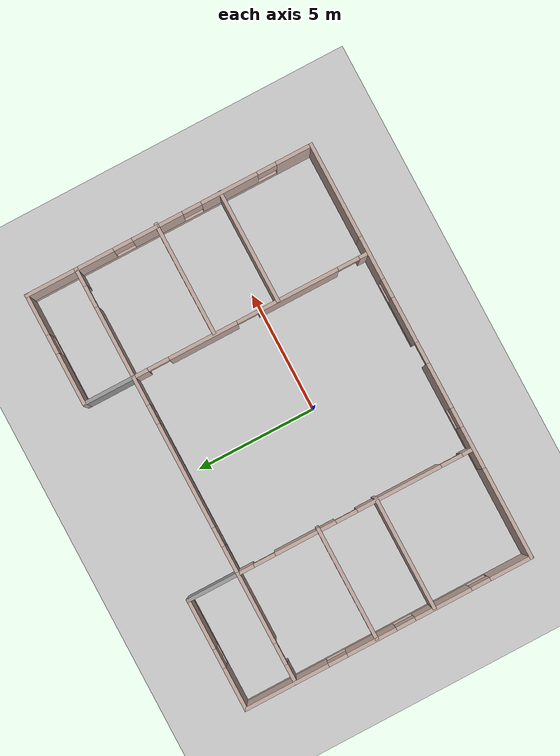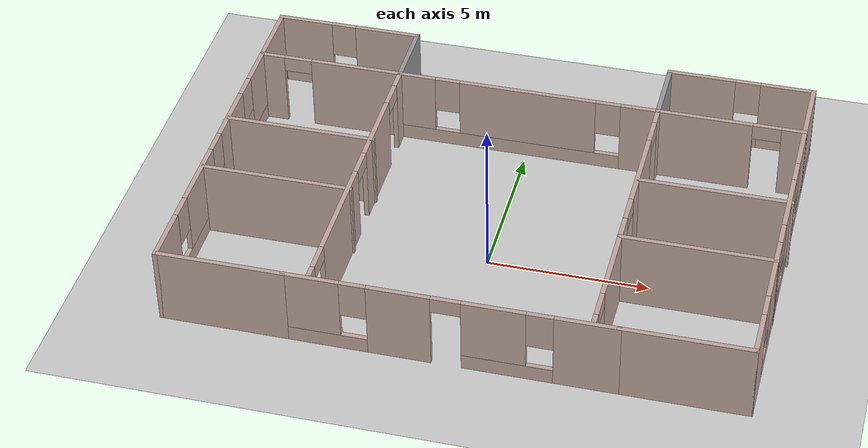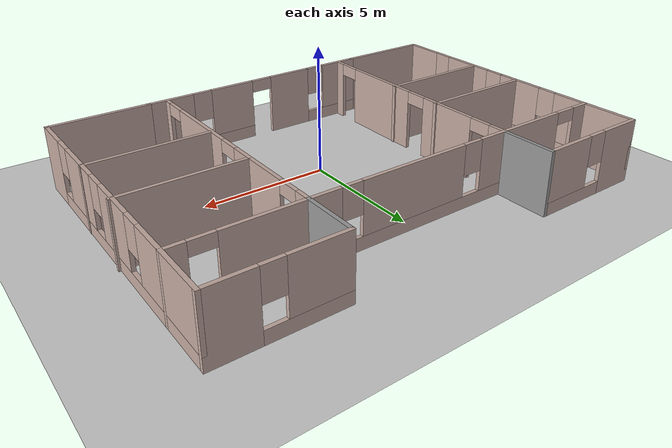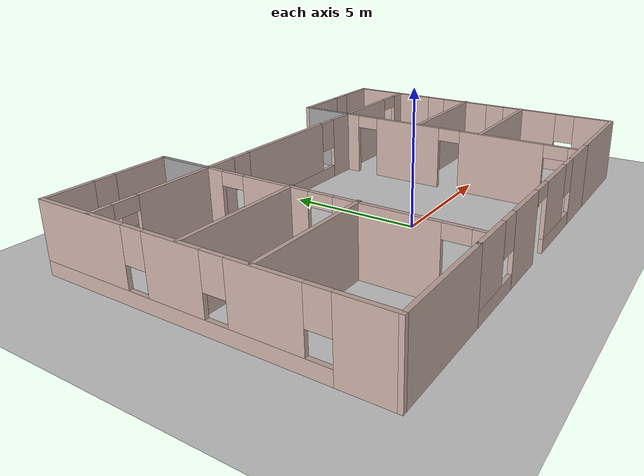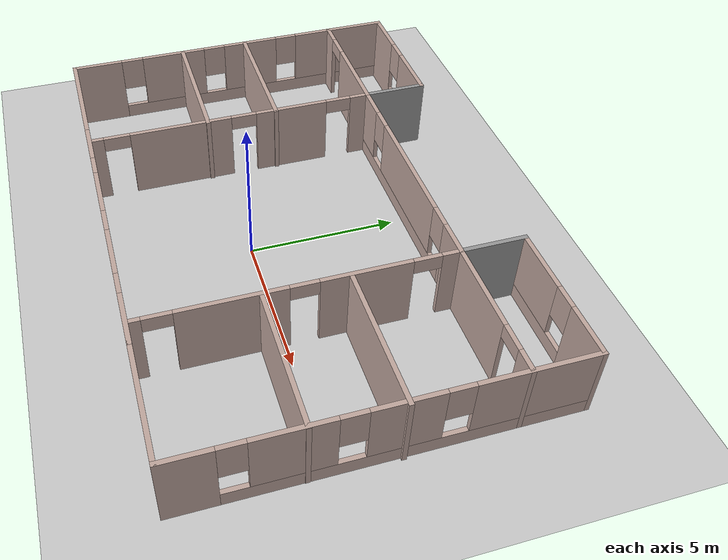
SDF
<sdf version="1.6">
 <world name="default">
  <model name="ground_plane">
   <static>1</static>
   <link name="link">
    <collision name="collision">
     <geometry><plane><normal>0 0 1</normal><size>100 100</size></plane></geometry>
     <surface>
      <contact><collide_bitmask>65535</collide_bitmask></contact>
      <friction><ode><mu>100</mu><mu2>50</mu2></ode></friction>
     </surface>
    </collision>
    <visual name="visual">
     <cast_shadows>0</cast_shadows>
     <geometry><plane><normal>0 0 1</normal><size>100 100</size></plane></geometry>
     <material>
      <script><uri>file://media/materials/scripts/gazebo.material</uri><name>Gazebo/Grey</name></script>
     </material>
    </visual>
   </link>
  </model>
  <model name="Untitled">
   <pose>0.02249 1.505 0 0 -0 0</pose>
   <link name="Wall_33">
    <collision name="Wall_33_Collision">
     <geometry><box><size>4 0.15 2.5</size></box></geometry>
     <pose>0 0 1.25 0 -0 0</pose>
    </collision>
    <visual name="Wall_33_Visual">
     <pose>0 0 1.25 0 -0 0</pose>
     <geometry><box><size>4 0.15 2.5</size></box></geometry>
     <material>
      <script><uri>file://media/materials/scripts/gazebo.material</uri><name>Gazebo/Grey</name></script>
      <ambient>0.760784 0.662745 0.627451 1</ambient>
     </material>
     <meta><layer>0</layer></meta>
    </visual>
    <pose>-6.8875 -6.05 0 0 -0 3.14159</pose>
   </link>
   <link name="Wall_36">
    <pose>-8.8125 0 0 0 -0 1.5708</pose>
    <visual name="Wall_36_Visual_0">
     <pose>-5.21271 0 1.25 0 -0 0</pose>
     <geometry><box><size>1.82458 0.15 2.5</size></box></geometry>
     <material>
      <script><uri>file://media/materials/scripts/gazebo.material</uri><name>Gazebo/Grey</name></script>
      <ambient>0.760784 0.662745 0.627451 1</ambient>
     </material>
     <meta><layer>0</layer></meta>
    </visual>
    <collision name="Wall_36_Collision_0">
     <geometry><box><size>1.82458 0.15 2.5</size></box></geometry>
     <pose>-5.21271 0 1.25 0 -0 0</pose>
    </collision>
    <visual name="Wall_36_Visual_1">
     <pose>0.912289 0 0.25 0 -0 0</pose>
     <geometry><box><size>10.4254 0.15 0.5</size></box></geometry>
     <material>
      <script><uri>file://media/materials/scripts/gazebo.material</uri><name>Gazebo/Grey</name></script>
      <ambient>0.760784 0.662745 0.627451 1</ambient>
     </material>
     <meta><layer>0</layer></meta>
    </visual>
    <collision name="Wall_36_Collision_1">
     <geometry><box><size>10.4254 0.15 0.5</size></box></geometry>
     <pose>0.912289 0 0.25 0 -0 0</pose>
    </collision>
    <visual name="Wall_36_Visual_2">
     <pose>-2.30973 0 1.5 0 -0 0</pose>
     <geometry><box><size>2.38138 0.15 2</size></box></geometry>
     <material>
      <script><uri>file://media/materials/scripts/gazebo.material</uri><name>Gazebo/Grey</name></script>
      <ambient>0.760784 0.662745 0.627451 1</ambient>
     </material>
     <meta><layer>0</layer></meta>
    </visual>
    <collision name="Wall_36_Collision_2">
     <geometry><box><size>2.38138 0.15 2</size></box></geometry>
     <pose>-2.30973 0 1.5 0 -0 0</pose>
    </collision>
    <visual name="Wall_36_Visual_3">
     <pose>0.718703 0 1.5 0 -0 0</pose>
     <geometry><box><size>2.07548 0.15 2</size></box></geometry>
     <material>
      <script><uri>file://media/materials/scripts/gazebo.material</uri><name>Gazebo/Grey</name></script>
      <ambient>0.760784 0.662745 0.627451 1</ambient>
     </material>
     <meta><layer>0</layer></meta>
    </visual>
    <collision name="Wall_36_Collision_3">
     <geometry><box><size>2.07548 0.15 2</size></box></geometry>
     <pose>0.718703 0 1.5 0 -0 0</pose>
    </collision>
    <visual name="Wall_36_Visual_4">
     <pose>4.34072 0 1.5 0 -0 0</pose>
     <geometry><box><size>3.56856 0.15 2</size></box></geometry>
     <material>
      <script><uri>file://media/materials/scripts/gazebo.material</uri><name>Gazebo/Grey</name></script>
      <ambient>0.760784 0.662745 0.627451 1</ambient>
     </material>
     <meta><layer>0</layer></meta>
    </visual>
    <collision name="Wall_36_Collision_4">
     <geometry><box><size>3.56856 0.15 2</size></box></geometry>
     <pose>4.34072 0 1.5 0 -0 0</pose>
    </collision>
    <visual name="Wall_36_Visual_5">
     <pose>-3.90042 0 1.9 0 -0 0</pose>
     <geometry><box><size>0.8 0.15 1.2</size></box></geometry>
     <material>
      <script><uri>file://media/materials/scripts/gazebo.material</uri><name>Gazebo/Grey</name></script>
      <ambient>0.760784 0.662745 0.627451 1</ambient>
     </material>
     <meta><layer>0</layer></meta>
    </visual>
    <collision name="Wall_36_Collision_5">
     <geometry><box><size>0.8 0.15 1.2</size></box></geometry>
     <pose>-3.90042 0 1.9 0 -0 0</pose>
    </collision>
    <visual name="Wall_36_Visual_6">
     <pose>-0.719037 0 1.9 0 -0 0</pose>
     <geometry><box><size>0.8 0.15 1.2</size></box></geometry>
     <material>
      <script><uri>file://media/materials/scripts/gazebo.material</uri><name>Gazebo/Grey</name></script>
      <ambient>0.760784 0.662745 0.627451 1</ambient>
     </material>
     <meta><layer>0</layer></meta>
    </visual>
    <collision name="Wall_36_Collision_6">
     <geometry><box><size>0.8 0.15 1.2</size></box></geometry>
     <pose>-0.719037 0 1.9 0 -0 0</pose>
    </collision>
    <visual name="Wall_36_Visual_7">
     <pose>2.15644 0 1.9 0 -0 0</pose>
     <geometry><box><size>0.8 0.15 1.2</size></box></geometry>
     <material>
      <script><uri>file://media/materials/scripts/gazebo.material</uri><name>Gazebo/Grey</name></script>
      <ambient>0.760784 0.662745 0.627451 1</ambient>
     </material>
     <meta><layer>0</layer></meta>
    </visual>
    <collision name="Wall_36_Collision_7">
     <geometry><box><size>0.8 0.15 1.2</size></box></geometry>
     <pose>2.15644 0 1.9 0 -0 0</pose>
    </collision>
   </link>
   <link name="Wall_37">
    <pose>-6.5125 6.05 0 0 -0 0</pose>
    <visual name="Wall_37_Visual_0">
     <pose>-1.47007 0 1.25 0 -0 0</pose>
     <geometry><box><size>1.80987 0.15 2.5</size></box></geometry>
     <material>
      <script><uri>file://media/materials/scripts/gazebo.material</uri><name>Gazebo/Grey</name></script>
      <ambient>0.760784 0.662745 0.627451 1</ambient>
     </material>
     <meta><layer>0</layer></meta>
    </visual>
    <collision name="Wall_37_Collision_0">
     <geometry><box><size>1.80987 0.15 2.5</size></box></geometry>
     <pose>-1.47007 0 1.25 0 -0 0</pose>
    </collision>
    <visual name="Wall_37_Visual_1">
     <pose>0.904934 0 0.25 0 -0 0</pose>
     <geometry><box><size>2.94013 0.15 0.5</size></box></geometry>
     <material>
      <script><uri>file://media/materials/scripts/gazebo.material</uri><name>Gazebo/Grey</name></script>
      <ambient>0.760784 0.662745 0.627451 1</ambient>
     </material>
     <meta><layer>0</layer></meta>
    </visual>
    <collision name="Wall_37_Collision_1">
     <geometry><box><size>2.94013 0.15 0.5</size></box></geometry>
     <pose>0.904934 0 0.25 0 -0 0</pose>
    </collision>
    <visual name="Wall_37_Visual_2">
     <pose>1.30493 0 1.5 0 -0 0</pose>
     <geometry><box><size>2.14013 0.15 2</size></box></geometry>
     <material>
      <script><uri>file://media/materials/scripts/gazebo.material</uri><name>Gazebo/Grey</name></script>
      <ambient>0.760784 0.662745 0.627451 1</ambient>
     </material>
     <meta><layer>0</layer></meta>
    </visual>
    <collision name="Wall_37_Collision_2">
     <geometry><box><size>2.14013 0.15 2</size></box></geometry>
     <pose>1.30493 0 1.5 0 -0 0</pose>
    </collision>
    <visual name="Wall_37_Visual_3">
     <pose>-0.165132 0 1.9 0 -0 0</pose>
     <geometry><box><size>0.8 0.15 1.2</size></box></geometry>
     <material>
      <script><uri>file://media/materials/scripts/gazebo.material</uri><name>Gazebo/Grey</name></script>
      <ambient>0.760784 0.662745 0.627451 1</ambient>
     </material>
     <meta><layer>0</layer></meta>
    </visual>
    <collision name="Wall_37_Collision_3">
     <geometry><box><size>0.8 0.15 1.2</size></box></geometry>
     <pose>-0.165132 0 1.9 0 -0 0</pose>
    </collision>
   </link>
   <link name="Wall_40">
    <collision name="Wall_40_Collision">
     <geometry><box><size>4 0.15 2.5</size></box></geometry>
     <pose>0 0 1.25 0 -0 0</pose>
    </collision>
    <visual name="Wall_40_Visual">
     <pose>0 0 1.25 0 -0 0</pose>
     <geometry><box><size>4 0.15 2.5</size></box></geometry>
     <material>
      <script><uri>file://media/materials/scripts/gazebo.material</uri><name>Gazebo/Grey</name></script>
      <ambient>0.760784 0.662745 0.627451 1</ambient>
     </material>
     <meta><layer>0</layer></meta>
    </visual>
    <pose>6.8125 -6.05 0 0 -0 0</pose>
   </link>
   <link name="Wall_42">
    <pose>8.73751 0 0 0 -0 1.5708</pose>
    <visual name="Wall_42_Visual_0">
     <pose>-5.33507 0 1.25 0 -0 0</pose>
     <geometry><box><size>1.57986 0.15 2.5</size></box></geometry>
     <material>
      <script><uri>file://media/materials/scripts/gazebo.material</uri><name>Gazebo/Grey</name></script>
      <ambient>0.760784 0.662745 0.627451 1</ambient>
     </material>
     <meta><layer>0</layer></meta>
    </visual>
    <collision name="Wall_42_Collision_0">
     <geometry><box><size>1.57986 0.15 2.5</size></box></geometry>
     <pose>-5.33507 0 1.25 0 -0 0</pose>
    </collision>
    <visual name="Wall_42_Visual_1">
     <pose>0.789928 0 0.25 0 -0 0</pose>
     <geometry><box><size>10.6701 0.15 0.5</size></box></geometry>
     <material>
      <script><uri>file://media/materials/scripts/gazebo.material</uri><name>Gazebo/Grey</name></script>
      <ambient>0.760784 0.662745 0.627451 1</ambient>
     </material>
     <meta><layer>0</layer></meta>
    </visual>
    <collision name="Wall_42_Collision_1">
     <geometry><box><size>10.6701 0.15 0.5</size></box></geometry>
     <pose>0.789928 0 0.25 0 -0 0</pose>
    </collision>
    <visual name="Wall_42_Visual_2">
     <pose>-2.55445 0 1.5 0 -0 0</pose>
     <geometry><box><size>2.38138 0.15 2</size></box></geometry>
     <material>
      <script><uri>file://media/materials/scripts/gazebo.material</uri><name>Gazebo/Grey</name></script>
      <ambient>0.760784 0.662745 0.627451 1</ambient>
     </material>
     <meta><layer>0</layer></meta>
    </visual>
    <collision name="Wall_42_Collision_2">
     <geometry><box><size>2.38138 0.15 2</size></box></geometry>
     <pose>-2.55445 0 1.5 0 -0 0</pose>
    </collision>
    <visual name="Wall_42_Visual_3">
     <pose>0.504572 0 1.5 0 -0 0</pose>
     <geometry><box><size>2.13666 0.15 2</size></box></geometry>
     <material>
      <script><uri>file://media/materials/scripts/gazebo.material</uri><name>Gazebo/Grey</name></script>
      <ambient>0.760784 0.662745 0.627451 1</ambient>
     </material>
     <meta><layer>0</layer></meta>
    </visual>
    <collision name="Wall_42_Collision_3">
     <geometry><box><size>2.13666 0.15 2</size></box></geometry>
     <pose>0.504572 0 1.5 0 -0 0</pose>
    </collision>
    <visual name="Wall_42_Visual_4">
     <pose>4.24895 0 1.5 0 -0 0</pose>
     <geometry><box><size>3.7521 0.15 2</size></box></geometry>
     <material>
      <script><uri>file://media/materials/scripts/gazebo.material</uri><name>Gazebo/Grey</name></script>
      <ambient>0.760784 0.662745 0.627451 1</ambient>
     </material>
     <meta><layer>0</layer></meta>
    </visual>
    <collision name="Wall_42_Collision_4">
     <geometry><box><size>3.7521 0.15 2</size></box></geometry>
     <pose>4.24895 0 1.5 0 -0 0</pose>
    </collision>
    <visual name="Wall_42_Visual_5">
     <pose>-4.14514 0 1.9 0 -0 0</pose>
     <geometry><box><size>0.8 0.15 1.2</size></box></geometry>
     <material>
      <script><uri>file://media/materials/scripts/gazebo.material</uri><name>Gazebo/Grey</name></script>
      <ambient>0.760784 0.662745 0.627451 1</ambient>
     </material>
     <meta><layer>0</layer></meta>
    </visual>
    <collision name="Wall_42_Collision_5">
     <geometry><box><size>0.8 0.15 1.2</size></box></geometry>
     <pose>-4.14514 0 1.9 0 -0 0</pose>
    </collision>
    <visual name="Wall_42_Visual_6">
     <pose>-0.963759 0 1.9 0 -0 0</pose>
     <geometry><box><size>0.8 0.15 1.2</size></box></geometry>
     <material>
      <script><uri>file://media/materials/scripts/gazebo.material</uri><name>Gazebo/Grey</name></script>
      <ambient>0.760784 0.662745 0.627451 1</ambient>
     </material>
     <meta><layer>0</layer></meta>
    </visual>
    <collision name="Wall_42_Collision_6">
     <geometry><box><size>0.8 0.15 1.2</size></box></geometry>
     <pose>-0.963759 0 1.9 0 -0 0</pose>
    </collision>
    <visual name="Wall_42_Visual_7">
     <pose>1.9729 0 1.9 0 -0 0</pose>
     <geometry><box><size>0.8 0.15 1.2</size></box></geometry>
     <material>
      <script><uri>file://media/materials/scripts/gazebo.material</uri><name>Gazebo/Grey</name></script>
      <ambient>0.760784 0.662745 0.627451 1</ambient>
     </material>
     <meta><layer>0</layer></meta>
    </visual>
    <collision name="Wall_42_Collision_7">
     <geometry><box><size>0.8 0.15 1.2</size></box></geometry>
     <pose>1.9729 0 1.9 0 -0 0</pose>
    </collision>
   </link>
   <link name="Wall_44">
    <pose>6.4375 6.05 0 0 -0 3.14159</pose>
    <visual name="Wall_44_Visual_0">
     <pose>-1.4986 0 1.25 0 -0 0</pose>
     <geometry><box><size>1.75279 0.15 2.5</size></box></geometry>
     <material>
      <script><uri>file://media/materials/scripts/gazebo.material</uri><name>Gazebo/Grey</name></script>
      <ambient>0.760784 0.662745 0.627451 1</ambient>
     </material>
     <meta><layer>0</layer></meta>
    </visual>
    <collision name="Wall_44_Collision_0">
     <geometry><box><size>1.75279 0.15 2.5</size></box></geometry>
     <pose>-1.4986 0 1.25 0 -0 0</pose>
    </collision>
    <visual name="Wall_44_Visual_1">
     <pose>0.876396 0 0.25 0 -0 0</pose>
     <geometry><box><size>2.99721 0.15 0.5</size></box></geometry>
     <material>
      <script><uri>file://media/materials/scripts/gazebo.material</uri><name>Gazebo/Grey</name></script>
      <ambient>0.760784 0.662745 0.627451 1</ambient>
     </material>
     <meta><layer>0</layer></meta>
    </visual>
    <collision name="Wall_44_Collision_1">
     <geometry><box><size>2.99721 0.15 0.5</size></box></geometry>
     <pose>0.876396 0 0.25 0 -0 0</pose>
    </collision>
    <visual name="Wall_44_Visual_2">
     <pose>1.2764 0 1.5 0 -0 0</pose>
     <geometry><box><size>2.19721 0.15 2</size></box></geometry>
     <material>
      <script><uri>file://media/materials/scripts/gazebo.material</uri><name>Gazebo/Grey</name></script>
      <ambient>0.760784 0.662745 0.627451 1</ambient>
     </material>
     <meta><layer>0</layer></meta>
    </visual>
    <collision name="Wall_44_Collision_2">
     <geometry><box><size>2.19721 0.15 2</size></box></geometry>
     <pose>1.2764 0 1.5 0 -0 0</pose>
    </collision>
    <visual name="Wall_44_Visual_3">
     <pose>-0.222208 0 1.9 0 -0 0</pose>
     <geometry><box><size>0.8 0.15 1.2</size></box></geometry>
     <material>
      <script><uri>file://media/materials/scripts/gazebo.material</uri><name>Gazebo/Grey</name></script>
      <ambient>0.760784 0.662745 0.627451 1</ambient>
     </material>
     <meta><layer>0</layer></meta>
    </visual>
    <collision name="Wall_44_Collision_3">
     <geometry><box><size>0.8 0.15 1.2</size></box></geometry>
     <pose>-0.222208 0 1.9 0 -0 0</pose>
    </collision>
   </link>
   <link name="Wall_46">
    <collision name="Wall_46_Collision">
     <geometry><box><size>2.25 0.15 2.5</size></box></geometry>
     <pose>0 0 1.25 0 -0 0</pose>
    </collision>
    <visual name="Wall_46_Visual">
     <pose>0 0 1.25 0 -0 0</pose>
     <geometry><box><size>2.25 0.15 2.5</size></box></geometry>
     <material>
      <script><uri>file://media/materials/scripts/gazebo.material</uri><name>Gazebo/Grey</name></script>
      <ambient>1 1 1 1</ambient>
     </material>
     <meta><layer>0</layer></meta>
    </visual>
    <pose>4.1375 5 0 0 0 -1.5708</pose>
   </link>
   <link name="Wall_69">
    <pose>6.4375 3.95 0 0 -0 0</pose>
    <visual name="Wall_69_Visual_0">
     <pose>-0.842543 0 1.25 0 -0 0</pose>
     <geometry><box><size>3.06492 0.15 2.5</size></box></geometry>
     <material>
      <script><uri>file://media/materials/scripts/gazebo.material</uri><name>Gazebo/Grey</name></script>
      <ambient>0.760784 0.662745 0.627451 1</ambient>
     </material>
     <meta><layer>0</layer></meta>
    </visual>
    <collision name="Wall_69_Collision_0">
     <geometry><box><size>3.06492 0.15 2.5</size></box></geometry>
     <pose>-0.842543 0 1.25 0 -0 0</pose>
    </collision>
    <visual name="Wall_69_Visual_1">
     <pose>1.98246 0 1.25 0 -0 0</pose>
     <geometry><box><size>0.785085 0.15 2.5</size></box></geometry>
     <material>
      <script><uri>file://media/materials/scripts/gazebo.material</uri><name>Gazebo/Grey</name></script>
      <ambient>0.760784 0.662745 0.627451 1</ambient>
     </material>
     <meta><layer>0</layer></meta>
    </visual>
    <collision name="Wall_69_Collision_1">
     <geometry><box><size>0.785085 0.15 2.5</size></box></geometry>
     <pose>1.98246 0 1.25 0 -0 0</pose>
    </collision>
    <visual name="Wall_69_Visual_2">
     <pose>1.13992 0 2.25 0 -0 0</pose>
     <geometry><box><size>0.9 0.15 0.5</size></box></geometry>
     <material>
      <script><uri>file://media/materials/scripts/gazebo.material</uri><name>Gazebo/Grey</name></script>
      <ambient>0.760784 0.662745 0.627451 1</ambient>
     </material>
     <meta><layer>0</layer></meta>
    </visual>
    <collision name="Wall_69_Collision_2">
     <geometry><box><size>0.9 0.15 0.5</size></box></geometry>
     <pose>1.13992 0 2.25 0 -0 0</pose>
    </collision>
   </link>
   <link name="Wall_73">
    <pose>-0.037495 3.95 0 0 -0 3.14159</pose>
    <visual name="Wall_73_Visual_0">
     <pose>-3.62406 0 1.25 0 -0 0</pose>
     <geometry><box><size>1.25188 0.15 2.5</size></box></geometry>
     <material>
      <script><uri>file://media/materials/scripts/gazebo.material</uri><name>Gazebo/Grey</name></script>
      <ambient>0.760784 0.662745 0.627451 1</ambient>
     </material>
     <meta><layer>0</layer></meta>
    </visual>
    <collision name="Wall_73_Collision_0">
     <geometry><box><size>1.25188 0.15 2.5</size></box></geometry>
     <pose>-3.62406 0 1.25 0 -0 0</pose>
    </collision>
    <visual name="Wall_73_Visual_1">
     <pose>0.625941 0 0.25 0 -0 0</pose>
     <geometry><box><size>7.24812 0.15 0.5</size></box></geometry>
     <material>
      <script><uri>file://media/materials/scripts/gazebo.material</uri><name>Gazebo/Grey</name></script>
      <ambient>0.760784 0.662745 0.627451 1</ambient>
     </material>
     <meta><layer>0</layer></meta>
    </visual>
    <collision name="Wall_73_Collision_1">
     <geometry><box><size>7.24812 0.15 0.5</size></box></geometry>
     <pose>0.625941 0 0.25 0 -0 0</pose>
    </collision>
    <visual name="Wall_73_Visual_2">
     <pose>0.002052 0 1.5 0 -0 0</pose>
     <geometry><box><size>4.40034 0.15 2</size></box></geometry>
     <material>
      <script><uri>file://media/materials/scripts/gazebo.material</uri><name>Gazebo/Grey</name></script>
      <ambient>0.760784 0.662745 0.627451 1</ambient>
     </material>
     <meta><layer>0</layer></meta>
    </visual>
    <collision name="Wall_73_Collision_2">
     <geometry><box><size>4.40034 0.15 2</size></box></geometry>
     <pose>0.002052 0 1.5 0 -0 0</pose>
    </collision>
    <visual name="Wall_73_Visual_3">
     <pose>3.62611 0 1.5 0 -0 0</pose>
     <geometry><box><size>1.24778 0.15 2</size></box></geometry>
     <material>
      <script><uri>file://media/materials/scripts/gazebo.material</uri><name>Gazebo/Grey</name></script>
      <ambient>0.760784 0.662745 0.627451 1</ambient>
     </material>
     <meta><layer>0</layer></meta>
    </visual>
    <collision name="Wall_73_Collision_3">
     <geometry><box><size>1.24778 0.15 2</size></box></geometry>
     <pose>3.62611 0 1.5 0 -0 0</pose>
    </collision>
    <visual name="Wall_73_Visual_4">
     <pose>-2.59812 0 1.9 0 -0 0</pose>
     <geometry><box><size>0.8 0.15 1.2</size></box></geometry>
     <material>
      <script><uri>file://media/materials/scripts/gazebo.material</uri><name>Gazebo/Grey</name></script>
      <ambient>0.760784 0.662745 0.627451 1</ambient>
     </material>
     <meta><layer>0</layer></meta>
    </visual>
    <collision name="Wall_73_Collision_4">
     <geometry><box><size>0.8 0.15 1.2</size></box></geometry>
     <pose>-2.59812 0 1.9 0 -0 0</pose>
    </collision>
    <visual name="Wall_73_Visual_5">
     <pose>2.60222 0 1.9 0 -0 0</pose>
     <geometry><box><size>0.8 0.15 1.2</size></box></geometry>
     <material>
      <script><uri>file://media/materials/scripts/gazebo.material</uri><name>Gazebo/Grey</name></script>
      <ambient>0.760784 0.662745 0.627451 1</ambient>
     </material>
     <meta><layer>0</layer></meta>
    </visual>
    <collision name="Wall_73_Collision_5">
     <geometry><box><size>0.8 0.15 1.2</size></box></geometry>
     <pose>2.60222 0 1.9 0 -0 0</pose>
    </collision>
   </link>
   <link name="Wall_74">
    <collision name="Wall_74_Collision">
     <geometry><box><size>2.25 0.15 2.5</size></box></geometry>
     <pose>0 0 1.25 0 -0 0</pose>
    </collision>
    <visual name="Wall_74_Visual">
     <pose>0 0 1.25 0 -0 0</pose>
     <geometry><box><size>2.25 0.15 2.5</size></box></geometry>
     <material>
      <script><uri>file://media/materials/scripts/gazebo.material</uri><name>Gazebo/Grey</name></script>
      <ambient>1 1 1 1</ambient>
     </material>
     <meta><layer>0</layer></meta>
    </visual>
    <pose>-4.21249 5 0 0 -0 1.5708</pose>
   </link>
   <link name="Wall_76">
    <pose>-6.5125 3.95 0 0 -0 3.14159</pose>
    <visual name="Wall_76_Visual_0">
     <pose>-0.871081 0 1.25 0 -0 0</pose>
     <geometry><box><size>3.00784 0.15 2.5</size></box></geometry>
     <material>
      <script><uri>file://media/materials/scripts/gazebo.material</uri><name>Gazebo/Grey</name></script>
      <ambient>0.760784 0.662745 0.627451 1</ambient>
     </material>
     <meta><layer>0</layer></meta>
    </visual>
    <collision name="Wall_76_Collision_0">
     <geometry><box><size>3.00784 0.15 2.5</size></box></geometry>
     <pose>-0.871081 0 1.25 0 -0 0</pose>
    </collision>
    <visual name="Wall_76_Visual_1">
     <pose>1.95392 0 1.25 0 -0 0</pose>
     <geometry><box><size>0.842161 0.15 2.5</size></box></geometry>
     <material>
      <script><uri>file://media/materials/scripts/gazebo.material</uri><name>Gazebo/Grey</name></script>
      <ambient>0.760784 0.662745 0.627451 1</ambient>
     </material>
     <meta><layer>0</layer></meta>
    </visual>
    <collision name="Wall_76_Collision_1">
     <geometry><box><size>0.842161 0.15 2.5</size></box></geometry>
     <pose>1.95392 0 1.25 0 -0 0</pose>
    </collision>
    <visual name="Wall_76_Visual_2">
     <pose>1.08284 0 2.25 0 -0 0</pose>
     <geometry><box><size>0.9 0.15 0.5</size></box></geometry>
     <material>
      <script><uri>file://media/materials/scripts/gazebo.material</uri><name>Gazebo/Grey</name></script>
      <ambient>0.760784 0.662745 0.627451 1</ambient>
     </material>
     <meta><layer>0</layer></meta>
    </visual>
    <collision name="Wall_76_Collision_2">
     <geometry><box><size>0.9 0.15 0.5</size></box></geometry>
     <pose>1.08284 0 2.25 0 -0 0</pose>
    </collision>
   </link>
   <link name="Wall_8">
    <pose>-0.037495 -6.05 0 0 -0 3.14159</pose>
    <visual name="Wall_8_Visual_0">
     <pose>-4.02965 0 1.25 0 -0 0</pose>
     <geometry><box><size>1.9407 0.15 2.5</size></box></geometry>
     <material>
      <script><uri>file://media/materials/scripts/gazebo.material</uri><name>Gazebo/Grey</name></script>
      <ambient>0.760784 0.662745 0.627451 1</ambient>
     </material>
     <meta><layer>0</layer></meta>
    </visual>
    <collision name="Wall_8_Collision_0">
     <geometry><box><size>1.9407 0.15 2.5</size></box></geometry>
     <pose>-4.02965 0 1.25 0 -0 0</pose>
    </collision>
    <visual name="Wall_8_Visual_1">
     <pose>1.49538 0 1.25 0 -0 0</pose>
     <geometry><box><size>1.90312 0.15 2.5</size></box></geometry>
     <material>
      <script><uri>file://media/materials/scripts/gazebo.material</uri><name>Gazebo/Grey</name></script>
      <ambient>0.760784 0.662745 0.627451 1</ambient>
     </material>
     <meta><layer>0</layer></meta>
    </visual>
    <collision name="Wall_8_Collision_1">
     <geometry><box><size>1.90312 0.15 2.5</size></box></geometry>
     <pose>1.49538 0 1.25 0 -0 0</pose>
    </collision>
    <visual name="Wall_8_Visual_2">
     <pose>-1.70774 0 0.25 0 -0 0</pose>
     <geometry><box><size>2.70312 0.15 0.5</size></box></geometry>
     <material>
      <script><uri>file://media/materials/scripts/gazebo.material</uri><name>Gazebo/Grey</name></script>
      <ambient>0.760784 0.662745 0.627451 1</ambient>
     </material>
     <meta><layer>0</layer></meta>
    </visual>
    <collision name="Wall_8_Collision_2">
     <geometry><box><size>2.70312 0.15 0.5</size></box></geometry>
     <pose>-1.70774 0 0.25 0 -0 0</pose>
    </collision>
    <visual name="Wall_8_Visual_3">
     <pose>3.72347 0 0.25 0 -0 0</pose>
     <geometry><box><size>2.55306 0.15 0.5</size></box></geometry>
     <material>
      <script><uri>file://media/materials/scripts/gazebo.material</uri><name>Gazebo/Grey</name></script>
      <ambient>0.760784 0.662745 0.627451 1</ambient>
     </material>
     <meta><layer>0</layer></meta>
    </visual>
    <collision name="Wall_8_Collision_3">
     <geometry><box><size>2.55306 0.15 0.5</size></box></geometry>
     <pose>3.72347 0 0.25 0 -0 0</pose>
    </collision>
    <visual name="Wall_8_Visual_4">
     <pose>-1.30774 0 1.5 0 -0 0</pose>
     <geometry><box><size>1.90312 0.15 2</size></box></geometry>
     <material>
      <script><uri>file://media/materials/scripts/gazebo.material</uri><name>Gazebo/Grey</name></script>
      <ambient>0.760784 0.662745 0.627451 1</ambient>
     </material>
     <meta><layer>0</layer></meta>
    </visual>
    <collision name="Wall_8_Collision_4">
     <geometry><box><size>1.90312 0.15 2</size></box></geometry>
     <pose>-1.30774 0 1.5 0 -0 0</pose>
    </collision>
    <visual name="Wall_8_Visual_5">
     <pose>-1.30774 0 1.5 0 -0 0</pose>
     <geometry><box><size>1.90312 0.15 2</size></box></geometry>
     <material>
      <script><uri>file://media/materials/scripts/gazebo.material</uri><name>Gazebo/Grey</name></script>
      <ambient>0.760784 0.662745 0.627451 1</ambient>
     </material>
     <meta><layer>0</layer></meta>
    </visual>
    <collision name="Wall_8_Collision_5">
     <geometry><box><size>1.90312 0.15 2</size></box></geometry>
     <pose>-1.30774 0 1.5 0 -0 0</pose>
    </collision>
    <visual name="Wall_8_Visual_6">
     <pose>4.12347 0 1.5 0 -0 0</pose>
     <geometry><box><size>1.75306 0.15 2</size></box></geometry>
     <material>
      <script><uri>file://media/materials/scripts/gazebo.material</uri><name>Gazebo/Grey</name></script>
      <ambient>0.760784 0.662745 0.627451 1</ambient>
     </material>
     <meta><layer>0</layer></meta>
    </visual>
    <collision name="Wall_8_Collision_6">
     <geometry><box><size>1.75306 0.15 2</size></box></geometry>
     <pose>4.12347 0 1.5 0 -0 0</pose>
    </collision>
    <visual name="Wall_8_Visual_7">
     <pose>-2.6593 0 1.9 0 -0 0</pose>
     <geometry><box><size>0.8 0.15 1.2</size></box></geometry>
     <material>
      <script><uri>file://media/materials/scripts/gazebo.material</uri><name>Gazebo/Grey</name></script>
      <ambient>0.760784 0.662745 0.627451 1</ambient>
     </material>
     <meta><layer>0</layer></meta>
    </visual>
    <collision name="Wall_8_Collision_7">
     <geometry><box><size>0.8 0.15 1.2</size></box></geometry>
     <pose>-2.6593 0 1.9 0 -0 0</pose>
    </collision>
    <visual name="Wall_8_Visual_8">
     <pose>2.84694 0 1.9 0 -0 0</pose>
     <geometry><box><size>0.8 0.15 1.2</size></box></geometry>
     <material>
      <script><uri>file://media/materials/scripts/gazebo.material</uri><name>Gazebo/Grey</name></script>
      <ambient>0.760784 0.662745 0.627451 1</ambient>
     </material>
     <meta><layer>0</layer></meta>
    </visual>
    <collision name="Wall_8_Collision_8">
     <geometry><box><size>0.8 0.15 1.2</size></box></geometry>
     <pose>2.84694 0 1.9 0 -0 0</pose>
    </collision>
    <visual name="Wall_8_Visual_9">
     <pose>0.093823 0 2.25 0 -0 0</pose>
     <geometry><box><size>0.9 0.15 0.5</size></box></geometry>
     <material>
      <script><uri>file://media/materials/scripts/gazebo.material</uri><name>Gazebo/Grey</name></script>
      <ambient>0.760784 0.662745 0.627451 1</ambient>
     </material>
     <meta><layer>0</layer></meta>
    </visual>
    <collision name="Wall_8_Collision_9">
     <geometry><box><size>0.9 0.15 0.5</size></box></geometry>
     <pose>0.093823 0 2.25 0 -0 0</pose>
    </collision>
    <visual name="Wall_8_Visual_10">
     <pose>0.093823 0 2.25 0 -0 0</pose>
     <geometry><box><size>0.9 0.15 0.5</size></box></geometry>
     <material>
      <script><uri>file://media/materials/scripts/gazebo.material</uri><name>Gazebo/Grey</name></script>
      <ambient>0.760784 0.662745 0.627451 1</ambient>
     </material>
     <meta><layer>0</layer></meta>
    </visual>
    <collision name="Wall_8_Collision_10">
     <geometry><box><size>0.9 0.15 0.5</size></box></geometry>
     <pose>0.093823 0 2.25 0 -0 0</pose>
    </collision>
   </link>
   <link name="Wall_83">
    <pose>-4.21249 -0.975 0 0 0 -1.5708</pose>
    <visual name="Wall_83_Visual_0">
     <pose>-4.62721 0 1.25 0 -0 0</pose>
     <geometry><box><size>0.745571 0.15 2.5</size></box></geometry>
     <material>
      <script><uri>file://media/materials/scripts/gazebo.material</uri><name>Gazebo/Grey</name></script>
      <ambient>0.760784 0.662745 0.627451 1</ambient>
     </material>
     <meta><layer>0</layer></meta>
    </visual>
    <collision name="Wall_83_Collision_0">
     <geometry><box><size>0.745571 0.15 2.5</size></box></geometry>
     <pose>-4.62721 0 1.25 0 -0 0</pose>
    </collision>
    <visual name="Wall_83_Visual_1">
     <pose>-2.06079 0 1.25 0 -0 0</pose>
     <geometry><box><size>2.58729 0.15 2.5</size></box></geometry>
     <material>
      <script><uri>file://media/materials/scripts/gazebo.material</uri><name>Gazebo/Grey</name></script>
      <ambient>0.760784 0.662745 0.627451 1</ambient>
     </material>
     <meta><layer>0</layer></meta>
    </visual>
    <collision name="Wall_83_Collision_1">
     <geometry><box><size>2.58729 0.15 2.5</size></box></geometry>
     <pose>-2.06079 0 1.25 0 -0 0</pose>
    </collision>
    <visual name="Wall_83_Visual_2">
     <pose>1.91594 0 1.25 0 -0 0</pose>
     <geometry><box><size>3.56617 0.15 2.5</size></box></geometry>
     <material>
      <script><uri>file://media/materials/scripts/gazebo.material</uri><name>Gazebo/Grey</name></script>
      <ambient>0.760784 0.662745 0.627451 1</ambient>
     </material>
     <meta><layer>0</layer></meta>
    </visual>
    <collision name="Wall_83_Collision_2">
     <geometry><box><size>3.56617 0.15 2.5</size></box></geometry>
     <pose>1.91594 0 1.25 0 -0 0</pose>
    </collision>
    <visual name="Wall_83_Visual_3">
     <pose>4.79952 0 1.25 0 -0 0</pose>
     <geometry><box><size>0.40097 0.15 2.5</size></box></geometry>
     <material>
      <script><uri>file://media/materials/scripts/gazebo.material</uri><name>Gazebo/Grey</name></script>
      <ambient>0.760784 0.662745 0.627451 1</ambient>
     </material>
     <meta><layer>0</layer></meta>
    </visual>
    <collision name="Wall_83_Collision_3">
     <geometry><box><size>0.40097 0.15 2.5</size></box></geometry>
     <pose>4.79952 0 1.25 0 -0 0</pose>
    </collision>
    <visual name="Wall_83_Visual_4">
     <pose>-3.80443 0 2.25 0 -0 0</pose>
     <geometry><box><size>0.9 0.15 0.5</size></box></geometry>
     <material>
      <script><uri>file://media/materials/scripts/gazebo.material</uri><name>Gazebo/Grey</name></script>
      <ambient>0.760784 0.662745 0.627451 1</ambient>
     </material>
     <meta><layer>0</layer></meta>
    </visual>
    <collision name="Wall_83_Collision_4">
     <geometry><box><size>0.9 0.15 0.5</size></box></geometry>
     <pose>-3.80443 0 2.25 0 -0 0</pose>
    </collision>
    <visual name="Wall_83_Visual_5">
     <pose>-0.317143 0 2.25 0 -0 0</pose>
     <geometry><box><size>0.9 0.15 0.5</size></box></geometry>
     <material>
      <script><uri>file://media/materials/scripts/gazebo.material</uri><name>Gazebo/Grey</name></script>
      <ambient>0.760784 0.662745 0.627451 1</ambient>
     </material>
     <meta><layer>0</layer></meta>
    </visual>
    <collision name="Wall_83_Collision_5">
     <geometry><box><size>0.9 0.15 0.5</size></box></geometry>
     <pose>-0.317143 0 2.25 0 -0 0</pose>
    </collision>
    <visual name="Wall_83_Visual_6">
     <pose>4.14903 0 2.25 0 -0 0</pose>
     <geometry><box><size>0.9 0.15 0.5</size></box></geometry>
     <material>
      <script><uri>file://media/materials/scripts/gazebo.material</uri><name>Gazebo/Grey</name></script>
      <ambient>0.760784 0.662745 0.627451 1</ambient>
     </material>
     <meta><layer>0</layer></meta>
    </visual>
    <collision name="Wall_83_Collision_6">
     <geometry><box><size>0.9 0.15 0.5</size></box></geometry>
     <pose>4.14903 0 2.25 0 -0 0</pose>
    </collision>
   </link>
   <link name="Wall_85">
    <pose>4.1375 -0.975 0 0 0 -1.5708</pose>
    <visual name="Wall_85_Visual_0">
     <pose>-4.6578 0 1.25 0 -0 0</pose>
     <geometry><box><size>0.684391 0.15 2.5</size></box></geometry>
     <material>
      <script><uri>file://media/materials/scripts/gazebo.material</uri><name>Gazebo/Grey</name></script>
      <ambient>0.760784 0.662745 0.627451 1</ambient>
     </material>
     <meta><layer>0</layer></meta>
    </visual>
    <collision name="Wall_85_Collision_0">
     <geometry><box><size>0.684391 0.15 2.5</size></box></geometry>
     <pose>-4.6578 0 1.25 0 -0 0</pose>
    </collision>
    <visual name="Wall_85_Visual_1">
     <pose>-1.96901 0 1.25 0 -0 0</pose>
     <geometry><box><size>2.89319 0.15 2.5</size></box></geometry>
     <material>
      <script><uri>file://media/materials/scripts/gazebo.material</uri><name>Gazebo/Grey</name></script>
      <ambient>0.760784 0.662745 0.627451 1</ambient>
     </material>
     <meta><layer>0</layer></meta>
    </visual>
    <collision name="Wall_85_Collision_1">
     <geometry><box><size>2.89319 0.15 2.5</size></box></geometry>
     <pose>-1.96901 0 1.25 0 -0 0</pose>
    </collision>
    <visual name="Wall_85_Visual_2">
     <pose>2.06889 0 1.25 0 -0 0</pose>
     <geometry><box><size>3.38263 0.15 2.5</size></box></geometry>
     <material>
      <script><uri>file://media/materials/scripts/gazebo.material</uri><name>Gazebo/Grey</name></script>
      <ambient>0.760784 0.662745 0.627451 1</ambient>
     </material>
     <meta><layer>0</layer></meta>
    </visual>
    <collision name="Wall_85_Collision_2">
     <geometry><box><size>3.38263 0.15 2.5</size></box></geometry>
     <pose>2.06889 0 1.25 0 -0 0</pose>
    </collision>
    <visual name="Wall_85_Visual_3">
     <pose>4.8301 0 1.25 0 -0 0</pose>
     <geometry><box><size>0.339789 0.15 2.5</size></box></geometry>
     <material>
      <script><uri>file://media/materials/scripts/gazebo.material</uri><name>Gazebo/Grey</name></script>
      <ambient>0.760784 0.662745 0.627451 1</ambient>
     </material>
     <meta><layer>0</layer></meta>
    </visual>
    <collision name="Wall_85_Collision_3">
     <geometry><box><size>0.339789 0.15 2.5</size></box></geometry>
     <pose>4.8301 0 1.25 0 -0 0</pose>
    </collision>
    <visual name="Wall_85_Visual_4">
     <pose>-3.86561 0 2.25 0 -0 0</pose>
     <geometry><box><size>0.9 0.15 0.5</size></box></geometry>
     <material>
      <script><uri>file://media/materials/scripts/gazebo.material</uri><name>Gazebo/Grey</name></script>
      <ambient>0.760784 0.662745 0.627451 1</ambient>
     </material>
     <meta><layer>0</layer></meta>
    </visual>
    <collision name="Wall_85_Collision_4">
     <geometry><box><size>0.9 0.15 0.5</size></box></geometry>
     <pose>-3.86561 0 2.25 0 -0 0</pose>
    </collision>
    <visual name="Wall_85_Visual_5">
     <pose>-0.072421 0 2.25 0 -0 0</pose>
     <geometry><box><size>0.9 0.15 0.5</size></box></geometry>
     <material>
      <script><uri>file://media/materials/scripts/gazebo.material</uri><name>Gazebo/Grey</name></script>
      <ambient>0.760784 0.662745 0.627451 1</ambient>
     </material>
     <meta><layer>0</layer></meta>
    </visual>
    <collision name="Wall_85_Collision_5">
     <geometry><box><size>0.9 0.15 0.5</size></box></geometry>
     <pose>-0.072421 0 2.25 0 -0 0</pose>
    </collision>
    <visual name="Wall_85_Visual_6">
     <pose>4.21021 0 2.25 0 -0 0</pose>
     <geometry><box><size>0.9 0.15 0.5</size></box></geometry>
     <material>
      <script><uri>file://media/materials/scripts/gazebo.material</uri><name>Gazebo/Grey</name></script>
      <ambient>0.760784 0.662745 0.627451 1</ambient>
     </material>
     <meta><layer>0</layer></meta>
    </visual>
    <collision name="Wall_85_Collision_6">
     <geometry><box><size>0.9 0.15 0.5</size></box></geometry>
     <pose>4.21021 0 2.25 0 -0 0</pose>
    </collision>
   </link>
   <link name="Wall_89">
    <collision name="Wall_89_Collision">
     <geometry><box><size>4.75 0.15 2.5</size></box></geometry>
     <pose>0 0 1.25 0 -0 0</pose>
    </collision>
    <visual name="Wall_89_Visual">
     <pose>0 0 1.25 0 -0 0</pose>
     <geometry><box><size>4.75 0.15 2.5</size></box></geometry>
     <material>
      <script><uri>file://media/materials/scripts/gazebo.material</uri><name>Gazebo/Grey</name></script>
      <ambient>0.760784 0.662745 0.627451 1</ambient>
     </material>
     <meta><layer>0</layer></meta>
    </visual>
    <pose>-6.45776 0.504572 0 0 -0 0</pose>
   </link>
   <link name="Wall_91">
    <collision name="Wall_91_Collision">
     <geometry><box><size>4.75 0.15 2.5</size></box></geometry>
     <pose>0 0 1.25 0 -0 0</pose>
    </collision>
    <visual name="Wall_91_Visual">
     <pose>0 0 1.25 0 -0 0</pose>
     <geometry><box><size>4.75 0.15 2.5</size></box></geometry>
     <material>
      <script><uri>file://media/materials/scripts/gazebo.material</uri><name>Gazebo/Grey</name></script>
      <ambient>0.760784 0.662745 0.627451 1</ambient>
     </material>
     <meta><layer>0</layer></meta>
    </visual>
    <pose>-6.45776 -1.94265 0 0 -0 0</pose>
   </link>
   <link name="Wall_93">
    <collision name="Wall_93_Collision">
     <geometry><box><size>4.75 0.15 2.5</size></box></geometry>
     <pose>0 0 1.25 0 -0 0</pose>
    </collision>
    <visual name="Wall_93_Visual">
     <pose>0 0 1.25 0 -0 0</pose>
     <geometry><box><size>4.75 0.15 2.5</size></box></geometry>
     <material>
      <script><uri>file://media/materials/scripts/gazebo.material</uri><name>Gazebo/Grey</name></script>
      <ambient>0.760784 0.662745 0.627451 1</ambient>
     </material>
     <meta><layer>0</layer></meta>
    </visual>
    <pose>6.5125 0.504572 0 0 -0 0</pose>
   </link>
   <link name="Wall_95">
    <collision name="Wall_95_Collision">
     <geometry><box><size>4.75 0.15 2.5</size></box></geometry>
     <pose>0 0 1.25 0 -0 0</pose>
    </collision>
    <visual name="Wall_95_Visual">
     <pose>0 0 1.25 0 -0 0</pose>
     <geometry><box><size>4.75 0.15 2.5</size></box></geometry>
     <material>
      <script><uri>file://media/materials/scripts/gazebo.material</uri><name>Gazebo/Grey</name></script>
      <ambient>0.760784 0.662745 0.627451 1</ambient>
     </material>
     <meta><layer>0</layer></meta>
    </visual>
    <pose>6.45131 -2.18737 0 0 -0 0</pose>
   </link>
   <static>1</static>
  </model>
 </world>
</sdf>
